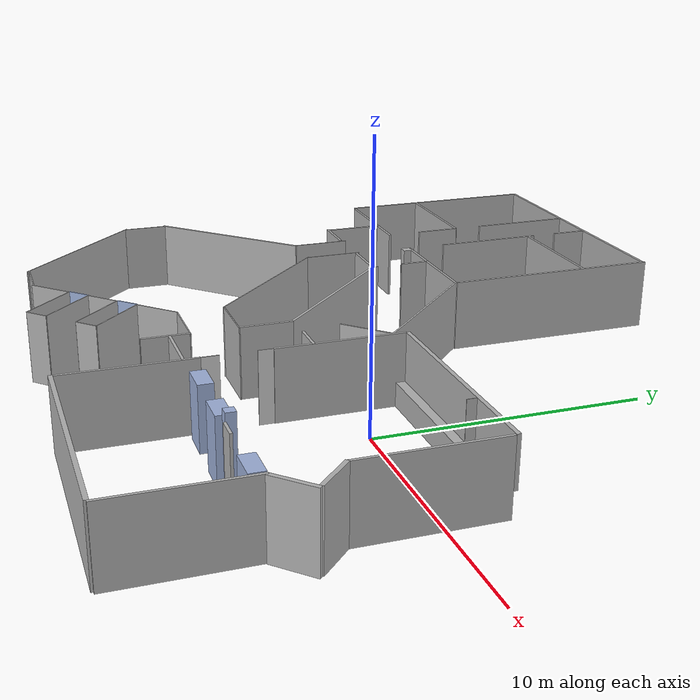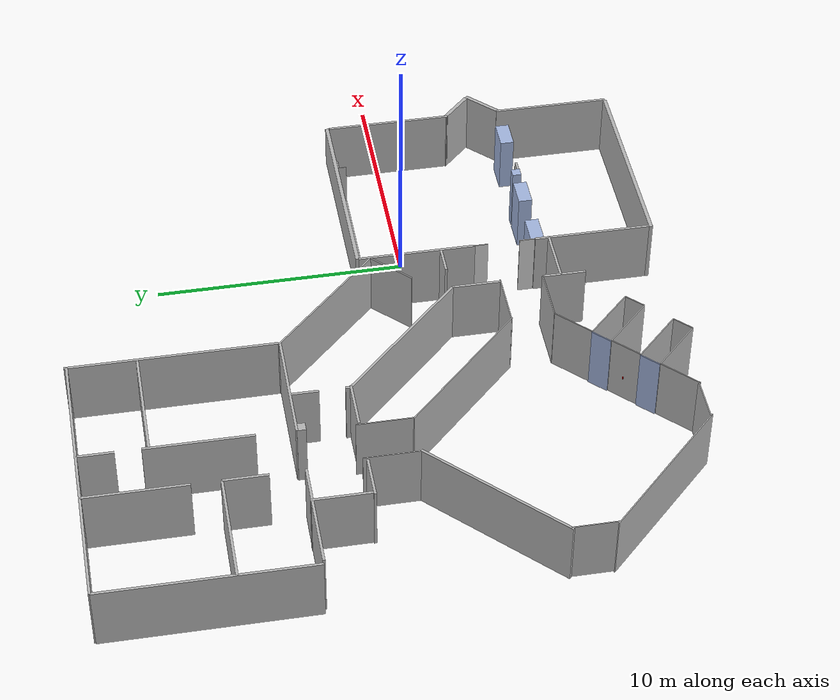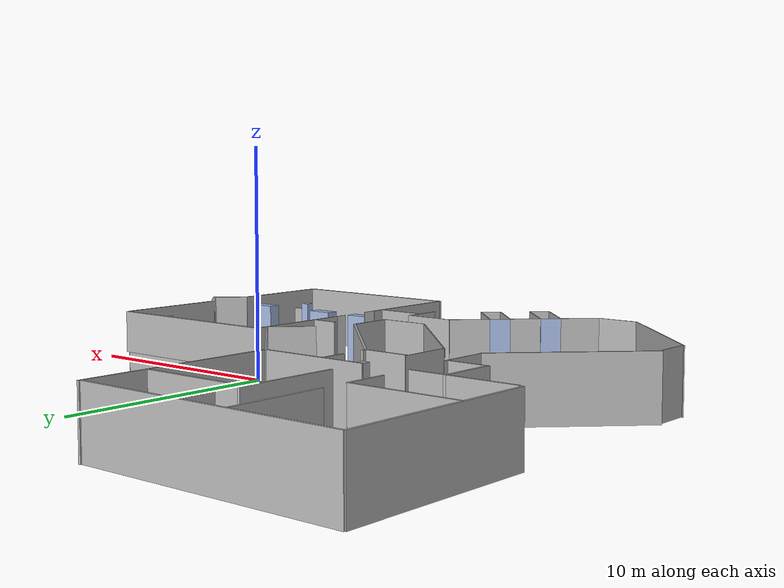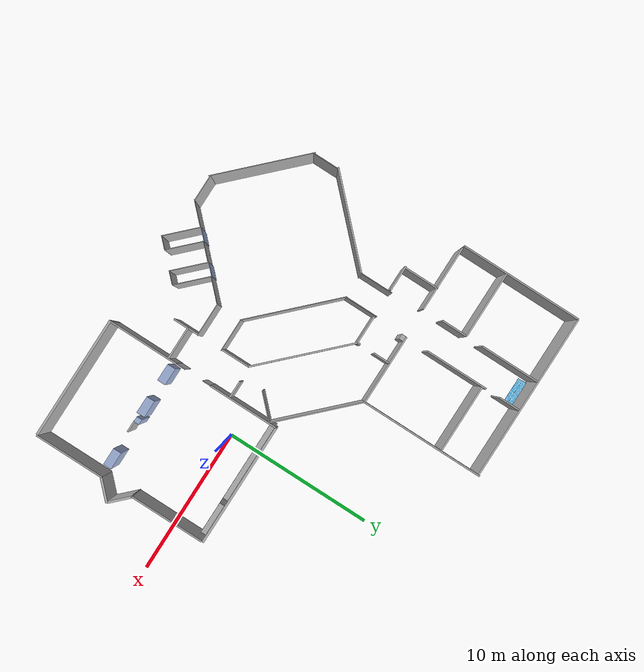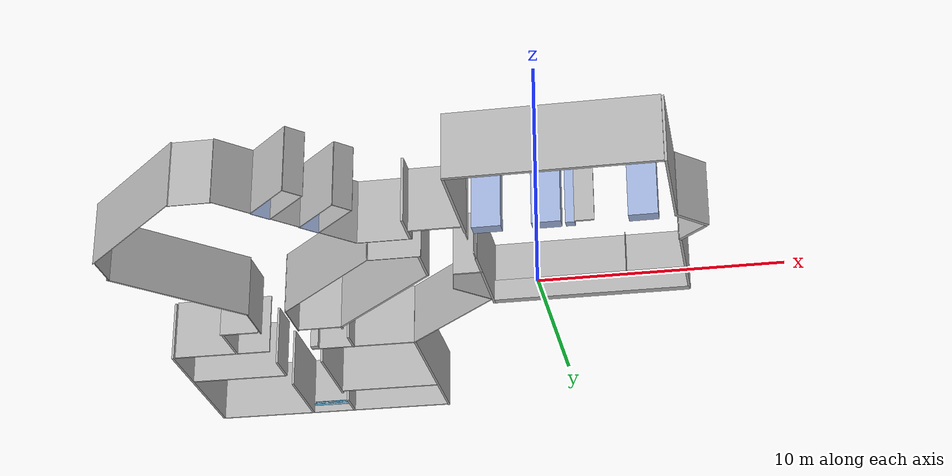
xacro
<?xml version="1.0"?>
<robot xmlns:xacro="http://www.ros.org/wiki/xacro"
       name="ipa-apartment">

  <xacro:include filename="$(find cob_gazebo_worlds)/urdf/common.xacro" />
  <xacro:include filename="$(find cob_gazebo_worlds)/urdf/materials.urdf.xacro" />

  <!-- apartment -->
  <xacro:include filename="$(find cob_gazebo_worlds)/urdf/ipa-apartment/apartment.urdf.xacro" />

  <!-- office-->
  <xacro:include filename="$(find cob_gazebo_worlds)/urdf/ipa-apartment/office.urdf.xacro" />

  <!-- landing-->
  <xacro:include filename="$(find cob_gazebo_worlds)/urdf/ipa-apartment/landing.urdf.xacro" />

  <!-- elevator-->
  <xacro:include filename="$(find cob_gazebo_worlds)/urdf/ipa-apartment/elevator.urdf.xacro" />

  <!-- cabinets-->
  <xacro:include filename="$(find cob_gazebo_worlds)/urdf/ipa-apartment/cabinets.urdf.xacro" />

  <!-- kitchen-->
  <xacro:include filename="$(find cob_gazebo_worlds)/urdf/ipa-apartment/kitchen.urdf.xacro" />

  <!-- wall_ipa-->
  <xacro:include filename="$(find cob_gazebo_worlds)/urdf/ipa-apartment/wall_ipa.urdf.xacro" />

  <!--Parameters-->
  <xacro:property name="dist_axis_x" value="1.969" />
  <xacro:property name="dist_axis_y" value="4.070" />

  <xacro:property name="size_total_x" value="8.0" />
  <xacro:property name="size_total_y" value="11.2" />

  <xacro:property name="size_a" value="4.7" />
  <xacro:property name="size_b" value="8.2" />
  <xacro:property name="size_c" value="1.8" />
  <xacro:property name="size_d" value="4.16" />

  <xacro:property name="wall_depth" value="0.1" />
  <xacro:property name="window_depth" value="0.15" />

  <xacro:property name="size_z_wall1" value="2.7" />
  <xacro:property name="size_z_wall2" value="2.7" />
  <xacro:property name="size_z_wall3" value="2.7" />

  <xacro:macro name="ipa-apartment" params="name">

    <gazebo>
      <plugin name="environment_gazebo_ros_control" filename="libgazebo_ros_control.so">
        <robotNamespace>world</robotNamespace>
        <robotParam>/world_description</robotParam>
      </plugin>
    </gazebo>

    <link name="world"/>

    <xacro:apartment name="apartment">
    </xacro:apartment>

    <xacro:landing name="landing" parent="world">
        <origin xyz="${-13.9+dist_axis_x} ${-dist_axis_y} 0" rpy="0 0 0" />
    </xacro:landing>

    <xacro:office name="office">
    </xacro:office>

    <xacro:elevator name="elevator">
    </xacro:elevator>

    <xacro:cabinets name="cabinets">
    </xacro:cabinets>

    <xacro:wall_ipa name="wall_ipa">
    </xacro:wall_ipa>

  </xacro:macro>

  <xacro:ipa-apartment name="ipa-apartment" />

</robot>

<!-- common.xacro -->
<robot xmlns:xacro="http://www.ros.org/wiki/xacro">

  <xacro:property name="M_PI" value="3.1415926535897931" />

  <!-- see https://secure.wikimedia.org/wikipedia/en/wiki/List_of_moment_of_inertia_tensors -->
  <xacro:macro name="sphere_inertial" params="radius mass *origin">
    <inertial>
      <mass value="${mass}" />
      <xacro:insert_block name="origin" />
      <inertia ixx="${0.4 * mass * radius * radius}" ixy="0.0" ixz="0.0"
        iyy="${0.4 * mass * radius * radius}" iyz="0.0"
        izz="${0.4 * mass * radius * radius}" />
    </inertial>
  </xacro:macro>

  <xacro:macro name="cylinder_inertial" params="radius length mass *origin">
    <inertial>
      <mass value="${mass}" />
      <xacro:insert_block name="origin" />
      <inertia ixx="${0.0833333 * mass * (3 * radius * radius + length * length)}" ixy="0.0" ixz="0.0"
        iyy="${0.0833333 * mass * (3 * radius * radius + length * length)}" iyz="0.0"
        izz="${0.5 * mass * radius * radius}" />
    </inertial>
  </xacro:macro>

  <xacro:macro name="box_inertial" params="x y z mass *origin">
    <inertial>
      <mass value="${mass}" />
      <xacro:insert_block name="origin" />
      <inertia ixx="${0.0833333 * mass * (y*y + z*z)}" ixy="0.0" ixz="0.0"
        iyy="${0.0833333 * mass * (x*x + z*z)}" iyz="0.0"
        izz="${0.0833333 * mass * (x*x + y*y)}" />
    </inertial>
  </xacro:macro>

  <xacro:macro name="default_inertial">
    <inertial>
      <mass value="0.01"/>
      <origin xyz="0 0 0"/>
      <inertia ixx="0.001" ixy="0.0" ixz="0.0" iyy="0.001" iyz="0.0" izz="0.001" />
    </inertial>
  </xacro:macro>

</robot>

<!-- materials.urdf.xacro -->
<robot>

  <material name="IPA/Blue">
    <color rgba="0.0 0.0 0.8 1.0"/>
  </material>

  <material name="IPA/Green">
    <color rgba="0.0 0.8 0.0 1.0"/>
  </material>

  <material name="IPA/Grey">
    <color rgba="0.7 0.7 0.7 1.0"/>
  </material>

  <material name="IPA/Grey2">
    <color rgba="0.81 0.81 0.81 1.0"/>
  </material>

  <material name="IPA/Red">
    <color rgba="0.8 0.0 0.0 1.0"/>
  </material>

  <material name="IPA/White">
    <color rgba="1.0 1.0 1.0 1.0"/>
  </material>

  <material name="IPA/Black">
    <color rgba="0.0 0.0 0.0 1.0"/>
  </material>

  <material name="IPA/Transparent">
    <color rgba="0.81 0.81 0.81 0.0"/>
  </material>

  <material name="IPA/LightBlue">
    <color rgba="0.624 0.698 0.858 1"/>
  </material>

</robot>

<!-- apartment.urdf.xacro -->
<robot xmlns:xacro="http://www.ros.org/wiki/xacro">

  <xacro:macro name="apartment" params="name">

  <!-- wall_00 -->
  <link name="wall_00">
    <xacro:box_inertial x="${wall_depth}" y="${size_d+0.18+0.35}" z="${size_z_wall1}" mass="5.0">
      <origin xyz="0 0 0" rpy="0 0 0" />
    </xacro:box_inertial>
    <visual>
      <origin xyz="0 0 0" />
      <geometry>
        <box size="${wall_depth} ${size_d+0.18+0.35} ${size_z_wall1}" />
      </geometry>
      <material name="IPA/Grey"/>
    </visual>
    <collision>
      <origin xyz="0 0 0" />
      <geometry>
        <box size="${wall_depth} ${size_d+0.18+0.35} ${size_z_wall1}" />
      </geometry>
    </collision>
  </link>

  <gazebo reference="wall_00">
    <material>wall_floor_05</material>
  </gazebo>

  <joint name="joint_wall_00" type="fixed">
    <origin xyz="${-size_total_x/2+dist_axis_x-wall_depth} ${(size_total_y/2-size_d/2+0.1-dist_axis_y)+0.175} ${size_z_wall1/2}" rpy="0 0 0" />
    <parent link="world" />
    <child link="wall_00" />
  </joint>

  <!-- wall_01 -->
  <link name="wall_01_part1">
    <xacro:box_inertial x="${size_b}" y="0.001" z="0.90" mass="5.0">
      <origin xyz="0 0 0" rpy="0 0 0" />
    </xacro:box_inertial>
    <visual>
      <origin xyz="0 0 0" />
      <geometry>
        <box size=" ${size_b} 0.001 0.90" />
      </geometry>
      <material name="IPA/Grey"/>
    </visual>
    <collision>
      <origin xyz="0 0 0" />
      <geometry>
        <box size="${size_b} 0.001 0.90" />
      </geometry>
    </collision>
  </link>

  <gazebo reference="wall_01_part1">
    <material>kitchen_wall_with_heating</material>
  </gazebo>

  <joint name="joint_wall_01_part1" type="fixed">
    <origin xyz="${dist_axis_x} ${size_total_y/2-dist_axis_y+window_depth+0.02} 0.45" rpy="0 0 0" />
    <parent link="world" />
    <child link="wall_01_part1" />
  </joint>

  <!-- wall_01_part2 -->
  <link name="wall_01_part2">
    <xacro:box_inertial x="${size_b}" y="0.35" z="0.90" mass="5.0">
      <origin xyz="0 0 0" rpy="0 0 0" />
    </xacro:box_inertial>
    <visual>
      <origin xyz="0 0 0" />
      <geometry>
        <box size=" ${size_b} 0.35 0.90" />
      </geometry>
      <material name="IPA/Grey"/>
    </visual>
    <collision>
      <origin xyz="0 0 0" />
      <geometry>
        <box size="${size_b} 0.35 0.90" />
      </geometry>
    </collision>
  </link>

  <gazebo reference="wall_01_part2">
    <material>kitchen_window_board</material>
  </gazebo>

  <joint name="joint_wall_01_part2" type="fixed">
    <origin xyz="${dist_axis_x} ${size_total_y/2-dist_axis_y+window_depth+0.195} 0.45" rpy="0 0 0" />
    <parent link="world" />
    <child link="wall_01_part2" />
  </joint>

  <!-- wall_01_little_glas -->
  <link name="wall_01_little_glas">
    <xacro:box_inertial x="0.02" y="0.35" z="2.70" mass="5.0">
      <origin xyz="0 0 0" rpy="0 0 0" />
    </xacro:box_inertial>
    <visual>
      <origin xyz="0 0 0" />
      <geometry>
        <box size="0.02 0.35 2.70" />
      </geometry>
      <material name="IPA/Grey"/>
    </visual>
    <collision>
      <origin xyz="0 0 0" />
      <geometry>
        <box size="0.02 0.35 2.70" />
      </geometry>
    </collision>
  </link>

  <gazebo reference="wall_01_little_glas">
    <material>kitchen_wall_with_windows</material>
  </gazebo>

  <joint name="joint_wall_01_little_glas" type="fixed">
    <origin xyz="3.5 ${size_total_y/2-dist_axis_y+window_depth+0.195} 1.35" rpy="0 0 0" />
    <parent link="world" />
    <child link="wall_01_little_glas" />
  </joint>

  <!-- wall_01_part3 -->
  <link name="wall_01_part3">
    <xacro:box_inertial x="${size_b}" y="${window_depth}" z="1.80" mass="5.0">
      <origin xyz="0 0 0" rpy="0 0 0" />
    </xacro:box_inertial>
    <visual>
      <origin xyz="0 0 0" />
      <geometry>
        <box size=" ${size_b} ${window_depth} 1.80" />
      </geometry>
      <material name="IPA/Grey"/>
    </visual>
    <collision>
      <origin xyz="0 0 0" />
      <geometry>
        <box size="${size_b} ${window_depth} 1.80" />
      </geometry>
    </collision>
  </link>

  <gazebo reference="wall_01_part3">
    <material>kitchen_wall_with_windows</material>
  </gazebo>

  <joint name="joint_wall_01_part3" type="fixed">
    <origin xyz="${dist_axis_x} ${size_total_y/2-dist_axis_y+window_depth+0.44} 1.80" rpy="0 0 0" />
    <parent link="world" />
    <child link="wall_01_part3" />
  </joint>

  <!-- wall_02 -->
  <link name="wall_02">
    <xacro:box_inertial x="${wall_depth}" y="${size_a+0.35}" z="${size_z_wall2}" mass="5.0">
      <origin xyz="0 0 0" rpy="0 0 0" />
    </xacro:box_inertial>
    <visual>
      <origin xyz="0 0 0" />
      <geometry>
        <box size="${wall_depth} ${size_a+0.35} ${size_z_wall2}" />
      </geometry>
      <material name="IPA/Grey"/>
    </visual>
    <collision>
      <origin xyz="0 0 0" />
      <geometry>
        <box size="${wall_depth} ${size_a+0.35} ${size_z_wall2}" />
      </geometry>
    </collision>
  </link>

  <gazebo reference="wall_02">
    <material>wall_floor_05</material>
  </gazebo>

  <joint name="joint_wall_02" type="fixed">
    <origin xyz="${size_total_x/2+dist_axis_x+wall_depth} ${(size_total_y/2-size_a/2+0.15-dist_axis_y)+0.175} ${size_z_wall2/2}" rpy="0 0 0" />
    <parent link="world" />
    <child link="wall_02" />
  </joint>

  <!-- wall_03 -->
  <link name="wall_03">
    <xacro:box_inertial x="${window_depth}" y="1.55" z="${size_z_wall2}" mass="5.0">
      <origin xyz="0 0 0" rpy="0 0 0" />
    </xacro:box_inertial>
    <visual>
      <origin xyz="0 0 0" />
      <geometry>
        <box size=" ${window_depth} 1.55 ${size_z_wall2}" />
      </geometry>
      <material name="IPA/Grey"/>
    </visual>
    <collision>
      <origin xyz="0 0 0" />
      <geometry>
        <box size="${window_depth} 1.55 ${size_z_wall2}" />
      </geometry>
    </collision>
  </link>

  <gazebo reference="wall_03">
    <material>emergencyExit_window_left</material>
  </gazebo>

  <joint name="joint_wall_03" type="fixed">
    <origin xyz="${size_total_x/2+dist_axis_x+0.55+window_depth/2} ${0.6-dist_axis_y} ${size_z_wall2/2}" rpy="0 0 0.785398" />
    <parent link="world" />
    <child link="wall_03" />
  </joint>

  <!-- wall_04 -->
  <link name="wall_04">
    <xacro:box_inertial x="${window_depth}" y="1.6" z="${size_z_wall2}" mass="5.0">
      <origin xyz="0 0 0" rpy="0 0 0" />
    </xacro:box_inertial>
    <visual>
      <origin xyz="0 0 0" />
      <geometry>
        <box size="${window_depth} 1.6 ${size_z_wall2}" />
      </geometry>
      <material name="IPA/Grey"/>
    </visual>
    <collision>
      <origin xyz="0 0 0" />
      <geometry>
        <box size="${window_depth} 1.6 ${size_z_wall2}" />
      </geometry>
    </collision>
  </link>

  <gazebo reference="wall_04">
    <material>emergencyExit_window_right</material>
  </gazebo>

  <joint name="joint_wall_04" type="fixed">
    <origin xyz="${size_total_x/2+dist_axis_x+0.61+window_depth/2} ${-0.54-dist_axis_y} ${size_z_wall2/2}" rpy="0 0 -0.785398" />
    <parent link="world" />
    <child link="wall_04" />
  </joint>

  <!-- wall_05 -->
  <link name="wall_05">
    <xacro:box_inertial x="${wall_depth}" y="${size_a}" z="${size_z_wall2}" mass="5.0">
      <origin xyz="0 0 0" rpy="0 0 0" />
    </xacro:box_inertial>
    <visual>
      <origin xyz="0 0 0" />
      <geometry>
        <box size="${wall_depth} ${size_a} ${size_z_wall2}" />
      </geometry>
      <material name="IPA/Grey"/>
    </visual>
    <collision>
      <origin xyz="0 0 0" />
      <geometry>
        <box size="${wall_depth} ${size_a} ${size_z_wall2}" />
      </geometry>
    </collision>
  </link>

  <gazebo reference="wall_05">
    <material>wall_floor_05</material>
  </gazebo>

  <joint name="joint_wall_05" type="fixed">
    <origin xyz="${size_total_x/2+dist_axis_x+wall_depth} ${-size_total_y/2+size_a/2-0.15-dist_axis_y} ${size_z_wall2/2}" rpy="0 0 0" />
    <parent link="world" />
    <child link="wall_05" />
  </joint>

  <!-- wall_06 -->
  <link name="wall_06">
    <xacro:box_inertial x="${size_b}" y="${window_depth}" z="${size_z_wall2}" mass="5.0">
      <origin xyz="0 0 0" rpy="0 0 0" />
    </xacro:box_inertial>
    <visual>
      <origin xyz="0 0 0" />
      <geometry>
        <box size=" ${size_b} ${window_depth} ${size_z_wall2}" />
      </geometry>
      <material name="IPA/Grey"/>
    </visual>
    <collision>
      <origin xyz="0 0 0" />
      <geometry>
        <box size="${size_b} ${window_depth+0.02} ${size_z_wall2}" />
      </geometry>
    </collision>
  </link>

  <gazebo reference="wall_06">
    <material>wall_livingroom1</material>
  </gazebo>

  <joint name="joint_wall_06" type="fixed">
    <origin xyz="${+dist_axis_x-0.05} ${-size_total_y/2-dist_axis_y-window_depth} ${size_z_wall2/2}" rpy="0 0 0" />
    <parent link="world" />
    <child link="wall_06" />
  </joint>

  <!-- wall_07 -->
  <link name="wall_07">
    <xacro:box_inertial x="${wall_depth}" y="${size_a}" z="${size_z_wall1}" mass="5.0">
      <origin xyz="0 0 0" rpy="0 0 0" />
    </xacro:box_inertial>
    <visual>
      <origin xyz="0 0 0" />
      <geometry>
        <box size="${wall_depth} ${size_a} ${size_z_wall1}" />
      </geometry>
      <material name="IPA/Grey"/>
    </visual>
    <collision>
      <origin xyz="0 0 0" />
      <geometry>
        <box size="${wall_depth} ${size_a} ${size_z_wall1}" />
      </geometry>
    </collision>
  </link>

  <gazebo reference="wall_07">
    <material>wall_floor_05</material>
  </gazebo>

  <joint name="joint_wall_07" type="fixed">
    <origin xyz="${-size_total_x/2+dist_axis_x-wall_depth} ${-size_total_y/2+size_a/2-0.1-dist_axis_y} ${size_z_wall1/2}" rpy="0 0 0" />
    <parent link="world" />
    <child link="wall_07" />
  </joint>

  <!-- door_00 -->
  <link name="door_00">
    <xacro:box_inertial x="0.04" y="0.62" z="${size_z_wall1}" mass="5.0">
      <origin xyz="0 0 0" rpy="0 0 0" />
    </xacro:box_inertial>
    <visual>
      <origin xyz="0 0 0" />
      <geometry>
        <box size="0.04 0.62 ${size_z_wall1}" />
      </geometry>
      <material name="IPA/Transparent"/>
    </visual>
    <collision>
      <origin xyz="0 0 0" />
      <geometry>
        <box size="0.04 0.62 ${size_z_wall1}" />
      </geometry>
    </collision>
  </link>

  <gazebo reference="door_00">
    <material>IPA/Wall2</material>
  </gazebo>

  <joint name="joint_door_00" type="fixed">
    <origin xyz="${-size_total_x/2+dist_axis_x-wall_depth} ${1.22-dist_axis_y} ${size_z_wall1/2}" rpy="0 0 0" />
    <parent link="world" />
    <child link="door_00" />
  </joint>

  <!-- door_01 -->
  <link name="door_01">
    <xacro:box_inertial x="0.04" y="0.62" z="${size_z_wall1}" mass="5.0">
      <origin xyz="0 0 0" rpy="0 0 0" />
    </xacro:box_inertial>
    <visual>
      <origin xyz="0 0 0" />
      <geometry>
        <box size="0.04 0.62 ${size_z_wall1}" />
      </geometry>
      <material name="IPA/Transparent"/>
    </visual>
    <collision>
      <origin xyz="0 0 0" />
      <geometry>
        <box size="0.04 0.62 ${size_z_wall1}" />
      </geometry>
    </collision>
  </link>

  <gazebo reference="door_01">
    <material>IPA/Wall2</material>
  </gazebo>

  <joint name="joint_door_01" type="fixed">
    <origin xyz="${-size_total_x/2+dist_axis_x-wall_depth} ${-0.68-dist_axis_y} ${size_z_wall1/2}" rpy="0 0 0" />
    <parent link="world" />
    <child link="door_01" />
  </joint>

  </xacro:macro>

</robot>

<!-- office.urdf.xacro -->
<robot xmlns:xacro="http://www.ros.org/wiki/xacro">

  <xacro:macro name="office" params="name">

  <link name="origin_office">
    <xacro:default_inertial/>
  </link>

  <joint name="joint_origin_office" type="fixed">
    <origin xyz="0 14 0" rpy="0 0 0" />
          <parent link="origin_landing"/>
    <child link="origin_office" />
  </joint>

  <!-- wall_office_00 -->
  <link name="wall_office_00">
    <xacro:box_inertial x="4.65" y="${wall_depth}" z="${size_z_wall1}" mass="5.0">
      <origin xyz="0 0 0" rpy="0 0 0" />
    </xacro:box_inertial>
    <visual>
      <origin xyz="0 0 0" />
      <geometry>
        <box size="4.65 ${wall_depth} ${size_z_wall1}" />
      </geometry>
      <material name="IPA/Grey"/>
    </visual>
    <collision>
      <origin xyz="0 0 0" />
      <geometry>
        <box size="4.65 ${wall_depth} ${size_z_wall1}" />
      </geometry>
    </collision>
  </link>

  <gazebo reference="wall_office_00">
    <material>wall_floor_05</material>
  </gazebo>

  <joint name="joint_wall_office_00" type="fixed">
    <origin xyz="3.25 -4.15 ${size_z_wall1/2}" rpy="0 0 0" />
    <parent link="origin_office" />
    <child link="wall_office_00" />
  </joint>

  <!-- wall_office_01 -->
  <link name="wall_office_01">
    <xacro:box_inertial x="4.4" y="${wall_depth}" z="${size_z_wall1}" mass="5.0">
      <origin xyz="0 0 0" rpy="0 0 0" />
    </xacro:box_inertial>
    <visual>
      <origin xyz="0 0 0" />
      <geometry>
        <box size="4.4 ${wall_depth} ${size_z_wall1}" />
      </geometry>
      <material name="IPA/Grey"/>
    </visual>
    <collision>
      <origin xyz="0 0 0" />
      <geometry>
        <box size="4.4 ${wall_depth} ${size_z_wall1}" />
      </geometry>
    </collision>
  </link>

  <gazebo reference="wall_office_01">
    <material>wall_floor_11</material>
  </gazebo>

  <joint name="joint_wall_office_01" type="fixed">
    <origin xyz="-3.25 -4.22 ${size_z_wall1/2}" rpy="0 0 0" />
    <parent link="origin_office" />
    <child link="wall_office_01" />
  </joint>

  <!-- wall_office_02 -->
  <link name="wall_office_02">
    <xacro:box_inertial x="${wall_depth}" y="8.2" z="${size_z_wall2}" mass="5.0">
      <origin xyz="0 0 0" rpy="0 0 0" />
    </xacro:box_inertial>
    <visual>
      <origin xyz="0 0 0" />
      <geometry>
        <box size="${wall_depth} 8.2 ${size_z_wall2}" />
      </geometry>
      <material name="IPA/Grey"/>
    </visual>
    <collision>
      <origin xyz="0 0 0" />
      <geometry>
        <box size="${wall_depth} 8.2 ${size_z_wall2}" />
      </geometry>
    </collision>
  </link>

  <gazebo reference="wall_office_02">
    <material>wall_livingroom1</material>
  </gazebo>

  <joint name="joint_wall_office_02" type="fixed">
    <origin xyz="5.6 0 ${size_z_wall2/2}" rpy="0 0 0" />
    <parent link="origin_office" />
    <child link="wall_office_02" />
  </joint>

  <!-- wall_office_03-->
  <link name="wall_office_03">
    <xacro:box_inertial x="${wall_depth}" y="8.2" z="${size_z_wall2}" mass="5.0">
      <origin xyz="0 0 0" rpy="0 0 0" />
    </xacro:box_inertial>
    <visual>
      <origin xyz="0 0 0" />
      <geometry>
        <box size="${wall_depth} 8.2 ${size_z_wall2}" />
      </geometry>
      <material name="IPA/Grey"/>
    </visual>
    <collision>
      <origin xyz="0 0 0" />
      <geometry>
        <box size="${wall_depth} 8.2 ${size_z_wall2}" />
      </geometry>
    </collision>
  </link>

  <gazebo reference="wall_office_03">
    <material>wall_livingroom1</material>
  </gazebo>

  <joint name="joint_wall_office_03" type="fixed">
    <origin xyz="-5.6 -0.1 ${size_z_wall2/2}" rpy="0 0 0" />
    <parent link="origin_office" />
    <child link="wall_office_03" />
  </joint>

  <!-- wall_04 -->
  <link name="wall_office_04">
    <xacro:box_inertial x="11.2" y="${wall_depth}" z="${size_z_wall2}" mass="5.0">
      <origin xyz="0 0 0" rpy="0 0 0" />
    </xacro:box_inertial>
    <visual>
      <origin xyz="0 0 0" />
      <geometry>
        <box size="11.2 ${wall_depth} ${size_z_wall2}" />
      </geometry>
      <material name="IPA/Grey"/>
    </visual>
    <collision>
      <origin xyz="0 0 0" />
      <geometry>
        <box size="11.2 ${wall_depth} ${size_z_wall2}" />
      </geometry>
    </collision>
  </link>

  <gazebo reference="wall_office_04">
    <material>wall_livingroom1</material>
  </gazebo>

  <joint name="joint_wall_office_04" type="fixed">
    <origin xyz="0 4 ${size_z_wall2/2}" rpy="0 0 0" />
    <parent link="origin_office" />
    <child link="wall_office_04" />
  </joint>

  <!-- wall_05 -->
  <link name="wall_office_05">
    <xacro:box_inertial x="${wall_depth}" y="4.21" z="${size_z_wall1}" mass="5.0">
      <origin xyz="0 0 0" rpy="0 0 0" />
    </xacro:box_inertial>
    <visual>
      <origin xyz="0 0 0" />
      <geometry>
        <box size="${wall_depth} 4.21 ${size_z_wall1}" />
      </geometry>
      <material name="IPA/Grey"/>
    </visual>
    <collision>
      <origin xyz="0 0 0" />
      <geometry>
        <box size="${wall_depth} 4.21 ${size_z_wall1}" />
      </geometry>
    </collision>
  </link>

  <gazebo reference="wall_office_05">
    <material>wall_floor_05</material>
  </gazebo>

  <joint name="joint_wall_office_05" type="fixed">
    <origin xyz="0.95 -0.52 ${size_z_wall1/2}" rpy="0 0 0" />
    <parent link="origin_office" />
    <child link="wall_office_05" />
  </joint>

  <!-- wall_06 -->
  <link name="wall_office_06">
    <xacro:box_inertial x="${wall_depth}" y="1.4" z="${size_z_wall1}" mass="5.0">
      <origin xyz="0 0 0" rpy="0 0 0" />
    </xacro:box_inertial>
    <visual>
      <origin xyz="0 0 0" />
      <geometry>
        <box size="${wall_depth} 1.40 ${size_z_wall1}" />
      </geometry>
      <material name="IPA/Grey"/>
    </visual>
    <collision>
      <origin xyz="0 0 0" />
      <geometry>
        <box size="${wall_depth} 1.40 ${size_z_wall1}" />
      </geometry>
    </collision>
  </link>

  <gazebo reference="wall_office_06">
    <material>wall_floor_06</material>
  </gazebo>

  <joint name="joint_wall_office_06" type="fixed">
    <origin xyz="0.95 3.28 ${size_z_wall1/2}" rpy="0 0 0" />
    <parent link="origin_office" />
    <child link="wall_office_06" />
  </joint>

  <!-- wall_07 -->
  <link name="wall_office_07">
    <xacro:box_inertial x="${wall_depth}" y="4.01" z="${size_z_wall1}" mass="5.0">
      <origin xyz="0 0 0" rpy="0 0 0" />
    </xacro:box_inertial>
    <visual>
      <origin xyz="0 0 0" />
      <geometry>
        <box size="${wall_depth} 4.01 ${size_z_wall1}" />
      </geometry>
      <material name="IPA/Grey"/>
    </visual>
    <collision>
      <origin xyz="0 0 0" />
      <geometry>
        <box size="${wall_depth} 4.01 ${size_z_wall1}" />
      </geometry>
    </collision>
  </link>

  <gazebo reference="wall_office_07">
    <material>wall_floor_07</material>
  </gazebo>

  <joint name="joint_wall_office_07" type="fixed">
    <origin xyz="-1.09 2 ${size_z_wall1/2}" rpy="0 0 0" />
    <parent link="origin_office" />
    <child link="wall_office_07" />
  </joint>

  <!-- wall_08 -->
  <link name="wall_office_08">
    <xacro:box_inertial x="${wall_depth}" y="1.73" z="${size_z_wall1}" mass="5.0">
      <origin xyz="0 0 0" rpy="0 0 0" />
    </xacro:box_inertial>
    <visual>
      <origin xyz="0 0 0" />
      <geometry>
        <box size="${wall_depth} 1.73 ${size_z_wall1}" />
      </geometry>
      <material name="IPA/Grey"/>
    </visual>
    <collision>
      <origin xyz="0 0 0" />
      <geometry>
        <box size="${wall_depth} 1.73 ${size_z_wall1}" />
      </geometry>
    </collision>
  </link>

  <gazebo reference="wall_office_08">
    <material>wall_floor_08</material>
  </gazebo>

  <joint name="joint_wall_office_08" type="fixed">
    <origin xyz="-1.09 -2 ${size_z_wall1/2}" rpy="0 0 0" />
    <parent link="origin_office" />
    <child link="wall_office_08" />
  </joint>

  <!-- wall_09 -->
  <link name="wall_office_09">
    <xacro:box_inertial x="4.53" y="${wall_depth}" z="${size_z_wall1}" mass="5.0">
      <origin xyz="0 0 0" rpy="0 0 0" />
    </xacro:box_inertial>
    <visual>
      <origin xyz="0 0 0" />
      <geometry>
        <box size="4.53 ${wall_depth} ${size_z_wall1}" />
      </geometry>
      <material name="IPA/Grey"/>
    </visual>
    <collision>
      <origin xyz="0 0 0" />
      <geometry>
        <box size="4.53 ${wall_depth} ${size_z_wall1}" />
      </geometry>
    </collision>
  </link>

  <gazebo reference="wall_office_09">
    <material>wall_bedroom1</material>
  </gazebo>

  <joint name="joint_wall_office_09" type="fixed">
    <origin xyz="3.26 1.32 ${size_z_wall1/2}" rpy="0 0 0" />
    <parent link="origin_office" />
    <child link="wall_office_09" />
  </joint>

  <!-- wall_10 -->
  <link name="wall_office_10">
    <xacro:box_inertial x="4.5" y="${wall_depth}" z="${size_z_wall1}" mass="5.0">
      <origin xyz="0 0 0" rpy="0 0 0" />
    </xacro:box_inertial>
    <visual>
      <origin xyz="0 0 0" />
      <geometry>
        <box size="4.5 ${wall_depth} ${size_z_wall1}" />
      </geometry>
      <material name="IPA/Grey"/>
    </visual>
    <collision>
      <origin xyz="0 0 0" />
      <geometry>
        <box size="4.5 ${wall_depth} ${size_z_wall1}" />
      </geometry>
    </collision>
  </link>

  <gazebo reference="wall_office_10">
    <material>wall_bedroom1</material>
  </gazebo>

  <joint name="joint_wall_office_10" type="fixed">
    <origin xyz="-3.35 -1.14 ${size_z_wall1/2}" rpy="0 0 0" />
    <parent link="origin_office" />
    <child link="wall_office_10" />
  </joint>

  <link name="boards_before_bedroom_link">
    <xacro:box_inertial x="1.8" y="0.55" z="0.22" mass="5.0">
      <origin xyz="0 0.03 0.11" rpy="0 0 0" />
    </xacro:box_inertial>
    <visual>
      <origin xyz="0 0 0" />
      <geometry>
        <mesh filename="package://cob_gazebo_worlds/Media/models/boards_before_bedroom.dae"/>
      </geometry>
    </visual>
    <collision>
      <origin xyz="0 0.03 0.11" />
      <geometry>
        <box size="1.8 0.55 0.22" />
       </geometry>
    </collision>
  </link>

  <joint name="joint_boards_before_bedroom" type="fixed">
    <origin xyz="0 3.62 0.25" rpy="0 0 0" />
    <parent link="origin_office" />
    <child link="boards_before_bedroom_link" />
  </joint>

  </xacro:macro>

</robot>

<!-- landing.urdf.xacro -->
<robot xmlns:xacro="http://www.ros.org/wiki/xacro">

  <xacro:macro name="landing" params="name parent *origin">

  <link name="origin_landing">
    <xacro:default_inertial/>
  </link>

  <joint name="joint_origin_landing" type="fixed">
    <xacro:insert_block name="origin" />
    <parent link="${parent}"/>
    <child link="origin_landing" />
  </joint>

  <!-- wall ext -->

  <!-- wall ext -->
  <link name="door_E334">
    <xacro:box_inertial x="2.2" y="${wall_depth}" z="${size_z_wall1}" mass="5.0">
      <origin xyz="0 0 0" rpy="0 0 0" />
    </xacro:box_inertial>
    <visual>
      <origin xyz="0 0 0" />
      <geometry>
        <box size="2.2 ${wall_depth} ${size_z_wall1}" />
      </geometry>
      <material name="IPA/Grey"/>
    </visual>
    <collision>
      <origin xyz="0 0 0" />
      <geometry>
        <box size="2.2 ${wall_depth} ${size_z_wall1}" />
      </geometry>
    </collision>
  </link>

  <gazebo reference="door_E334">
    <material>door_E334</material>
  </gazebo>

  <joint name="joint_door_E334" type="fixed">
    <origin xyz="8.70 -1.565 ${size_z_wall1/2}" rpy="0 0 0" />
    <parent link="origin_landing" />
    <child link="door_E334" />
  </joint>

  <!-- wall ext -->
  <link name="wall_ext3">
    <xacro:box_inertial x="${wall_depth}" y="1.73" z="${size_z_wall1}" mass="5.0">
      <origin xyz="0 0 0" rpy="0 0 0" />
    </xacro:box_inertial>
    <visual>
      <origin xyz="0 0 0" />
      <geometry>
        <box size="${wall_depth} 1.73 ${size_z_wall1}" />
      </geometry>
      <material name="IPA/Grey"/>
    </visual>
    <collision>
      <origin xyz="0 0 0" />
      <geometry>
        <box size="${wall_depth} 1.73 ${size_z_wall1}" />
      </geometry>
    </collision>
  </link>

  <gazebo reference="wall_ext3">
    <material>wall_floor_07</material>
  </gazebo>

  <joint name="joint_wall_ext3" type="fixed">
    <origin xyz="7.6 -1.7 ${size_z_wall1/2}" rpy="0 0 0" />
    <parent link="origin_landing" />
    <child link="wall_ext3" />
  </joint>

  <!-- wall ext -->
  <link name="wall_ext4">
    <xacro:box_inertial x="${wall_depth}" y="1.93" z="${size_z_wall1}" mass="5.0">
      <origin xyz="0 0 0" rpy="0 0 0" />
    </xacro:box_inertial>
    <visual>
      <origin xyz="0 0 0" />
      <geometry>
        <box size="${wall_depth} 1.93 ${size_z_wall1}" />
      </geometry>
      <material name="IPA/Grey"/>
    </visual>
    <collision>
      <origin xyz="0 0 0" />
      <geometry>
        <box size="${wall_depth} 1.93 ${size_z_wall1}" />
      </geometry>
    </collision>
  </link>

  <gazebo reference="wall_ext4">
    <material>wall_floor_07</material>
  </gazebo>

  <joint name="joint_wall_ext4" type="fixed">
    <origin xyz="7.58 1.83 ${size_z_wall1/2}" rpy="0 0 0" />
    <parent link="origin_landing" />
    <child link="wall_ext4" />
  </joint>

  <link name="wall_ext5">
    <xacro:box_inertial x="2.24" y="0.04" z="${size_z_wall1}" mass="5.0">
      <origin xyz="0 0 0" rpy="0 0 0" />
    </xacro:box_inertial>
    <visual>
      <origin xyz="0 0 0" />
      <geometry>
        <box size="2.24 0.04 ${size_z_wall1}" />
      </geometry>
      <material name="IPA/Grey"/>
    </visual>
    <collision>
      <origin xyz="0 0 0" />
      <geometry>
        <box size="2.24 0.04 ${size_z_wall1}" />
      </geometry>
    </collision>
  </link>

  <gazebo reference="wall_ext5">
    <material>door_opposite_of_men_toilet</material>
  </gazebo>

  <joint name="joint_wall_ext5" type="fixed">
    <origin xyz="6.55 -0.85 ${size_z_wall1/2}" rpy="0 0 0" />
    <parent link="origin_landing" />
    <child link="wall_ext5" />
  </joint>

  <link name="wall_ext6">
    <xacro:box_inertial x="2.24" y="0.04" z="${size_z_wall1}" mass="5.0">
      <origin xyz="0 0 0" rpy="0 0 0" />
    </xacro:box_inertial>
    <visual>
      <origin xyz="0 0 0" />
      <geometry>
        <box size="2.24 0.04 ${size_z_wall1}" />
      </geometry>
      <material name="IPA/Grey"/>
    </visual>
    <collision>
      <origin xyz="0 0 0" />
      <geometry>
        <box size="2.24 0.04 ${size_z_wall1}" />
      </geometry>
    </collision>
  </link>

  <gazebo reference="wall_ext6">
    <material>door_toilet_men</material>
  </gazebo>

  <joint name="joint_wall_ext6" type="fixed">
    <origin xyz="6.55 0.85 ${size_z_wall1/2}" rpy="0 0 0" />
    <parent link="origin_landing" />
    <child link="wall_ext6" />
  </joint>

  <!--office landing-->

  <!-- wall ext -->
  <link name="wall_ext8">
    <xacro:box_inertial x="${wall_depth}" y="2.3" z="${size_z_wall1}" mass="5.0">
      <origin xyz="0 0 0" rpy="0 0 0" />
    </xacro:box_inertial>
    <visual>
      <origin xyz="0 0 0" />
      <geometry>
        <box size="${wall_depth} 2.3 ${size_z_wall1}" />
      </geometry>
      <material name="IPA/Grey"/>
    </visual>
    <collision>
      <origin xyz="0 0 0" />
      <geometry>
        <box size="${wall_depth} 2.3 ${size_z_wall1}" />
      </geometry>
    </collision>
  </link>

  <gazebo reference="wall_ext8">
    <material>wall_floor_05</material>
  </gazebo>

  <joint name="joint_wall_ext8" type="fixed">
    <origin xyz="-2.565 8.7 ${size_z_wall1/2}" rpy="0 0 0" />
    <parent link="origin_landing" />
    <child link="wall_ext8" />
  </joint>

  <!-- wall ext -->
  <link name="wall_ext9">
    <xacro:box_inertial x="1.73" y="${wall_depth}" z="${size_z_wall1}" mass="5.0">
      <origin xyz="0 0 0" rpy="0 0 0" />
    </xacro:box_inertial>
    <visual>
      <origin xyz="0 0 0" />
      <geometry>
        <box size="1.73 ${wall_depth} ${size_z_wall1}" />
      </geometry>
      <material name="IPA/Grey"/>
    </visual>
    <collision>
      <origin xyz="0 0 0" />
      <geometry>
        <box size="1.73 ${wall_depth} ${size_z_wall1}" />
      </geometry>
    </collision>
  </link>

  <gazebo reference="wall_ext9">
    <material>wall_floor_07</material>
  </gazebo>

  <joint name="joint_wall_ext9" type="fixed">
    <origin xyz="-1.8 7.50 ${size_z_wall1/2}" rpy="0 0 0" />
    <parent link="origin_landing" />
    <child link="wall_ext9" />
  </joint>

  <!-- wall ext -->
  <link name="wall_ext10">
    <xacro:box_inertial x="1.96" y="${wall_depth}" z="${size_z_wall1}" mass="5.0">
      <origin xyz="0 0 0" rpy="0 0 0" />
    </xacro:box_inertial>
    <visual>
      <origin xyz="0 0 0" />
      <geometry>
        <box size="1.96 ${wall_depth} ${size_z_wall1}" />
      </geometry>
      <material name="IPA/Grey"/>
    </visual>
    <collision>
      <origin xyz="0 0 0" />
      <geometry>
        <box size="1.96 ${wall_depth} ${size_z_wall1}" />
      </geometry>
    </collision>
  </link>

  <gazebo reference="wall_ext10">
    <material>wall_floor_07</material>
  </gazebo>

  <joint name="joint_wall_ext10" type="fixed">
    <origin xyz="1.89 7.53 ${size_z_wall1/2}" rpy="0 0 0" />
    <parent link="origin_landing" />
    <child link="wall_ext10" />
  </joint>

  <link name="wall_ext11">
    <xacro:box_inertial x="0.04" y="2.24" z="${size_z_wall1}" mass="5.0">
      <origin xyz="0 0 0" rpy="0 0 0" />
    </xacro:box_inertial>
    <visual>
      <origin xyz="0 0 0" />
      <geometry>
        <box size="0.04 2.24 ${size_z_wall1}" />
      </geometry>
      <material name="IPA/Grey"/>
    </visual>
    <collision>
      <origin xyz="0 0 0" />
      <geometry>
        <box size="0.04 2.24 ${size_z_wall1}" />
      </geometry>
    </collision>
  </link>

  <gazebo reference="wall_ext11">
    <material>door_women_toilet</material>
  </gazebo>

  <joint name="joint_wall_ext11" type="fixed">
    <origin xyz="-0.85 6.55 ${size_z_wall1/2}" rpy="0 0 0" />
    <parent link="origin_landing" />
    <child link="wall_ext11" />
  </joint>

  <link name="wall_ext12">
    <xacro:box_inertial x="0.04" y="2.24" z="${size_z_wall1}" mass="5.0">
      <origin xyz="0 0 0" rpy="0 0 0" />
    </xacro:box_inertial>
    <visual>
      <origin xyz="0 0 0" />
      <geometry>
        <box size="0.04 2.24 ${size_z_wall1}" />
      </geometry>
      <material name="IPA/Grey"/>
    </visual>
    <collision>
      <origin xyz="0 0 0" />
      <geometry>
        <box size="0.04 2.24 ${size_z_wall1}" />
      </geometry>
    </collision>
  </link>

  <gazebo reference="wall_ext12">
    <material>door_E322</material>
  </gazebo>

  <joint name="joint_wall_ext12" type="fixed">
    <origin xyz="0.85 6.55 ${size_z_wall1/2}" rpy="0 0 0" />
    <parent link="origin_landing" />
    <child link="wall_ext12" />
  </joint>

  <link name="wall_ext13">
    <xacro:box_inertial x="0.04" y="6.6" z="${size_z_wall1}" mass="5.0">
      <origin xyz="0 0 0" rpy="0 0 0" />
    </xacro:box_inertial>
    <visual>
      <origin xyz="0 0 0" />
      <geometry>
        <box size="0.04 6.6 ${size_z_wall1}" />
      </geometry>
      <material name="IPA/Grey"/>
    </visual>
    <collision>
      <origin xyz="0 0 0" />
      <geometry>
        <box size="0.04 6.6 ${size_z_wall1}" />
      </geometry>
    </collision>
  </link>

  <gazebo reference="wall_ext13">
    <material>wall_floor_07</material>
  </gazebo>

  <joint name="joint_wall_ext13" type="fixed">
    <origin xyz="3.15 3.15 ${size_z_wall1/2}" rpy="0 0 0.7854" />
    <parent link="origin_landing" />
    <child link="wall_ext13" />
  </joint>

  <link name="wall_ext14">
    <xacro:box_inertial x="${wall_depth}" y="6.6" z="${size_z_wall1}" mass="5.0">
      <origin xyz="0 0 0" rpy="0 0 0" />
    </xacro:box_inertial>
    <visual>
      <origin xyz="0 0 0" />
      <geometry>
        <box size="${wall_depth} 6.6 ${size_z_wall1}" />
      </geometry>
      <material name="IPA/Grey"/>
    </visual>
    <collision>
      <origin xyz="0 0 0" />
      <geometry>
        <box size="${wall_depth} 6.6 ${size_z_wall1}" />
      </geometry>
    </collision>
  </link>

  <gazebo reference="wall_ext14">
    <material>wall_floor_07</material>
  </gazebo>

  <joint name="joint_wall_ext14" type="fixed">
    <origin xyz="-3.15 3.15 ${size_z_wall1/2}" rpy="0 0 -0.7854" />
    <parent link="origin_landing" />
    <child link="wall_ext14" />
  </joint>

  <link name="wall_ext15">
    <xacro:box_inertial x="0.04" y="6.6" z="${size_z_wall1}" mass="5.0">
      <origin xyz="0 0 0" rpy="0 0 0" />
    </xacro:box_inertial>
    <visual>
      <origin xyz="0 0 0" />
      <geometry>
        <box size="0.04 6.6 ${size_z_wall1}" />
      </geometry>
      <material name="IPA/Grey"/>
    </visual>
    <collision>
      <origin xyz="0 0 0" />
      <geometry>
        <box size="0.04 6.6 ${size_z_wall1}" />
      </geometry>
    </collision>
  </link>

  <gazebo reference="wall_ext15">
    <material>wall_floor_07</material>
  </gazebo>

  <joint name="joint_wall_ext15" type="fixed">
    <origin xyz="-3.15 -3.15 ${size_z_wall1/2}" rpy="0 0 0.7854" />
    <parent link="origin_landing" />
    <child link="wall_ext15" />
  </joint>

  <link name="wall_ext16">
    <xacro:box_inertial x="0.04" y="1.8" z="${size_z_wall1}" mass="5.0">
      <origin xyz="0 0 0" rpy="0 0 0" />
    </xacro:box_inertial>
    <visual>
      <origin xyz="0 0 0" />
      <geometry>
        <box size="0.04 1.8 ${size_z_wall1}" />
      </geometry>
      <material name="IPA/Grey"/>
    </visual>
    <collision>
      <origin xyz="0 0 0" />
      <geometry>
        <box size="0.04 1.8 ${size_z_wall1}" />
      </geometry>
    </collision>
  </link>

  <gazebo reference="wall_ext16">
    <material>wall_floor_07</material>
  </gazebo>

  <joint name="joint_wall_ext16" type="fixed">
    <origin xyz="-5.4 0 ${size_z_wall1/2}" rpy="0 0 0" />
    <parent link="origin_landing" />
    <child link="wall_ext16" />
  </joint>

  <link name="wall_ext17">
    <xacro:box_inertial x="1.8" y="0.04" z="${size_z_wall1}" mass="5.0">
      <origin xyz="0 0 0" rpy="0 0 0" />
    </xacro:box_inertial>
    <visual>
      <origin xyz="0 0 0" />
      <geometry>
        <box size="1.8 0.04 ${size_z_wall1}" />
      </geometry>
      <material name="IPA/Grey"/>
    </visual>
    <collision>
      <origin xyz="0 0 0" />
      <geometry>
        <box size="1.8 0.04 ${size_z_wall1}" />
      </geometry>
    </collision>
  </link>

  <gazebo reference="wall_ext17">
    <material>wall_floor_07</material>
  </gazebo>

  <joint name="joint_wall_ext17" type="fixed">
    <origin xyz="0 -5.4 ${size_z_wall1/2}" rpy="0 0 0" />
    <parent link="origin_landing" />
    <child link="wall_ext17" />
  </joint>

  <link name="wall_ext21">
    <xacro:box_inertial x="${wall_depth}" y="6.75" z="${size_z_wall1}" mass="5.0">
      <origin xyz="0 0 0" rpy="0 0 0" />
    </xacro:box_inertial>
    <visual>
      <origin xyz="0 0 0" />
      <geometry>
        <box size="${wall_depth} 6.75 ${size_z_wall1}" />
      </geometry>
      <material name="IPA/Grey"/>
    </visual>
    <collision>
      <origin xyz="0 0 0" />
      <geometry>
        <box size="${wall_depth} 6.75 ${size_z_wall1}" />
      </geometry>
    </collision>
  </link>

  <gazebo reference="wall_ext21">
    <material>wall_livingroom2</material>
  </gazebo>

  <joint name="joint_wall_ext21" type="fixed">
    <origin xyz="5.20 5.15 ${size_z_wall1/2}" rpy="0 0 0.7854" />
    <parent link="origin_landing" />
    <child link="wall_ext21" />
  </joint>

  <link name="wall_ext22">
    <xacro:box_inertial x="0.06" y="6.00" z="${size_z_wall2}" mass="5.0">
      <origin xyz="0 0 0" rpy="0 0 0" />
    </xacro:box_inertial>
    <visual>
      <origin xyz="0 0 0" />
      <geometry>
        <box size="0.06 6.00 ${size_z_wall2}" />
      </geometry>
      <material name="IPA/Grey"/>
    </visual>
    <collision>
      <origin xyz="0 0 0" />
      <geometry>
        <box size="0.06 6.00 ${size_z_wall2}" />
      </geometry>
    </collision>
  </link>

  <gazebo reference="wall_ext22">
    <material>wall_livingroom1</material>
  </gazebo>

  <joint name="joint_wall_ext22" type="fixed">
    <origin xyz="7.65 7.79 ${size_z_wall2/2}" rpy="0 0 0.7854" />
    <parent link="origin_landing" />
    <child link="wall_ext22" />
  </joint>

  <link name="wall_ext23">
    <xacro:box_inertial x="1.2" y="${wall_depth}" z="${size_z_wall1}" mass="5.0">
      <origin xyz="0 0 0" rpy="0 0 0" />
    </xacro:box_inertial>
    <visual>
      <origin xyz="0 0 0" />
      <geometry>
        <box size="1.2 ${wall_depth} ${size_z_wall1}" />
      </geometry>
      <material name="IPA/Grey"/>
    </visual>
    <collision>
      <origin xyz="0 0 0" />
      <geometry>
        <box size="1.2 ${wall_depth} ${size_z_wall1}" />
      </geometry>
    </collision>
  </link>

  <gazebo reference="wall_ext23">
    <material>wall_floor_06</material>
  </gazebo>

  <joint name="joint_wall_ext23" type="fixed">
    <origin xyz="9.22 2.83 ${size_z_wall1/2}" rpy="0 0 0" />
    <parent link="origin_landing" />
    <child link="wall_ext23" />
  </joint>

  <link name="wall_ext24">
    <xacro:box_inertial x="1.99" y="0.06" z="${size_z_wall1}" mass="5.0">
      <origin xyz="0 0 0" rpy="0 0 0" />
    </xacro:box_inertial>
    <visual>
      <origin xyz="0 0 0" />
      <geometry>
        <box size="1.99 0.06 ${size_z_wall1}" />
      </geometry>
      <material name="IPA/Grey"/>
    </visual>
    <collision>
      <origin xyz="0 0 0" />
      <geometry>
        <box size="1.99 0.06 ${size_z_wall1}" />
      </geometry>
    </collision>
  </link>

  <gazebo reference="wall_ext24">
    <material>livingroom_slidingdoor</material>
  </gazebo>

  <joint name="joint_wall_ext24" type="fixed">
    <origin xyz="9.058 4.958 ${size_z_wall1/2}" rpy="0 0 0.7854" />
    <parent link="origin_landing" />
    <child link="wall_ext24" />
  </joint>

  <!-- wall ext25 -->
  <link name="wall_ext25">
    <xacro:box_inertial x="${wall_depth}" y="1.1" z="${size_z_wall1}" mass="5.0">
      <origin xyz="0 0 0" rpy="0 0 0" />
    </xacro:box_inertial>
    <visual>
      <origin xyz="0 0 0" />
      <geometry>
        <box size="${wall_depth} 1.1 ${size_z_wall1}" />
      </geometry>
      <material name="IPA/Grey"/>
    </visual>
    <collision>
      <origin xyz="0 0 0" />
      <geometry>
        <box size="${wall_depth} 1.1 ${size_z_wall1}" />
      </geometry>
    </collision>
  </link>

  <gazebo reference="wall_ext25">
    <material>wall_floor_06</material>
  </gazebo>

  <joint name="joint_wall_ext25" type="fixed">
    <origin xyz="2.81 9.3 ${size_z_wall1/2}" rpy="0 0 0" />
    <parent link="origin_landing" />
    <child link="wall_ext25" />
  </joint>

  <!-- wall ext26 -->
  <link name="wall_ext26">
    <xacro:box_inertial x="${wall_depth}" y="0.23" z="${size_z_wall1}" mass="5.0">
      <origin xyz="0 0 0" rpy="0 0 0" />
    </xacro:box_inertial>
    <visual>
      <origin xyz="0 0 0" />
      <geometry>
        <box size="${wall_depth} 0.23 ${size_z_wall1}" />
      </geometry>
      <material name="IPA/Grey"/>
    </visual>
    <collision>
      <origin xyz="0 0 0" />
      <geometry>
        <box size="${wall_depth} 0.23 ${size_z_wall1}" />
      </geometry>
    </collision>
  </link>

  <gazebo reference="wall_ext26">
    <material>wall_floor_08</material>
  </gazebo>

  <joint name="joint_wall_ext26" type="fixed">
    <origin xyz="2.81 7.63 ${size_z_wall1/2}" rpy="0 0 0" />
    <parent link="origin_landing" />
    <child link="wall_ext26" />
  </joint>

  <!-- pillar ext01 -->
  <link name="pillar_ext01">
    <xacro:box_inertial x="0.35" y="0.35" z="${size_z_wall1}" mass="5.0">
      <origin xyz="0 0 0" rpy="0 0 0" />
    </xacro:box_inertial>
    <visual>
      <origin xyz="0 0 0" />
      <geometry>
        <box size="0.35 0.35 ${size_z_wall1}" />
      </geometry>
      <material name="IPA/Grey"/>
    </visual>
    <collision>
      <origin xyz="0 0 0" />
      <geometry>
        <box size="0.35 0.35 ${size_z_wall1}" />
      </geometry>
    </collision>
  </link>

  <gazebo reference="pillar_ext01">
    <material>wall_floor_12</material>
  </gazebo>

  <joint name="joint_pillar_ext01" type="fixed">
    <origin xyz="1.08 9.675 ${size_z_wall1/2}" rpy="0 0 0" />
    <parent link="origin_landing" />
    <child link="pillar_ext01" />
  </joint>

  </xacro:macro>

</robot>

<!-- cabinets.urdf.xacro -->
<robot xmlns:xacro="http://www.ros.org/wiki/xacro">

  <xacro:macro name="cabinets" params="name">

  <!-- cabinet1 -->
  <link name="cabinet1">
    <xacro:box_inertial x="1.15" y="0.55" z="2.40" mass="5.0">
      <origin xyz="0 0 0" rpy="0 0 0" />
    </xacro:box_inertial>
    <visual>
      <origin xyz="0 0 0" />
      <geometry>
        <box size="1.15 0.55 2.40" />
      </geometry>
      <material name="IPA/LightBlue"/>
    </visual>
    <collision>
      <origin xyz="0 0 0" />
      <geometry>
        <box size="1.15 0.55 2.40" />
      </geometry>
    </collision>
  </link>

  <gazebo reference="cabinet1">
    <material>IPA/CabinetBlue</material>
  </gazebo>

  <joint name="joint_cabinet1" type="fixed">
    <origin xyz="${size_total_x/2-1.125+dist_axis_x} ${-size_total_y/2+size_a-0.275-dist_axis_y} 1.2" rpy="0 0 0" />
    <parent link="world" />
    <child link="cabinet1" />
  </joint>

  <link name="cabinet2">
    <xacro:box_inertial x="1.15" y="0.55" z="2.40" mass="5.0">
      <origin xyz="0 0 0" rpy="0 0 0" />
    </xacro:box_inertial>
    <visual>
      <origin xyz="0 0 0" />
      <geometry>
        <box size="1.15 0.55 2.40" />
      </geometry>
      <material name="IPA/LightBlue"/>
    </visual>
    <collision>
      <origin xyz="0 0 0" />
      <geometry>
        <box size="1.15 0.55 2.40" />
      </geometry>
    </collision>
  </link>

  <gazebo reference="cabinet2">
    <material>IPA/CabinetBlue</material>
  </gazebo>

  <joint name="joint_cabinet2" type="fixed">
    <origin xyz="${size_total_x/2-4.865+dist_axis_x} ${-size_total_y/2+size_a-0.275-dist_axis_y} 1.2" rpy="0 0 0" />
    <parent link="world" />
    <child link="cabinet2" />
  </joint>

  <link name="cabinet3">
    <xacro:box_inertial x="1.15" y="0.55" z="2.40" mass="5.0">
      <origin xyz="0 0 0" rpy="0 0 0" />
    </xacro:box_inertial>
    <visual>
      <origin xyz="0 0 0" />
      <geometry>
        <box size="1.15 0.55 2.40" />
      </geometry>
      <material name="IPA/LightBlue"/>
    </visual>
    <collision>
      <origin xyz="0 0 0" />
      <geometry>
        <box size="1.15 0.55 2.40" />
      </geometry>
    </collision>
  </link>

  <gazebo reference="cabinet3">
    <material>IPA/CabinetBlue</material>
  </gazebo>

  <joint name="joint_cabinet3" type="fixed">
    <origin xyz="${size_total_x/2-7.205+dist_axis_x} ${-size_total_y/2+size_a-0.275-dist_axis_y} 1.2" rpy="0 0 0" />
    <parent link="world" />
    <child link="cabinet3" />
  </joint>

  <link name="column">
    <xacro:box_inertial x="0.36" y="0.36" z="${size_z_wall1}" mass="5.0">
      <origin xyz="0 0 0" rpy="0 0 0" />
    </xacro:box_inertial>
    <visual>
      <origin xyz="0 0 0" />
      <geometry>
        <box size="0.36 0.36 ${size_z_wall1}" />
      </geometry>
      <material name="IPA/LightBlue"/>
    </visual>
    <collision>
      <origin xyz="0 0 0" />
      <geometry>
        <box size="0.36 0.36 ${size_z_wall1}" />
      </geometry>
    </collision>
  </link>

  <gazebo reference="column">
    <material>IPA/WallApartment</material>
  </gazebo>

  <joint name="joint_column" type="fixed">
    <origin xyz="${size_total_x/2-3.96+dist_axis_x} ${-size_total_y/2+size_a-0.18-dist_axis_y} ${size_z_wall1/2}" rpy="0 0 0" />
    <parent link="world" />
    <child link="column" />
  </joint>

  </xacro:macro>

</robot>

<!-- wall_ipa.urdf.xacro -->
<robot xmlns:xacro="http://www.ros.org/wiki/xacro">

  <xacro:macro name="wall_ipa" params="name">

  <link name="wall_ipa">
    <xacro:box_inertial x="0.77" y="0.10" z="2.40" mass="5.0">
      <origin xyz="0 0 0" rpy="0 0 0" />
    </xacro:box_inertial>
    <visual>
      <origin xyz="0 0 0" />
      <geometry>
        <box size="0.77 0.10 2.40" />
      </geometry>
      <material name="IPA/Grey"/>
    </visual>
    <collision>
      <origin xyz="0 0 0" />
      <geometry>
        <box size="0.77 0.10 2.40" />
      </geometry>
    </collision>
  </link>

  <gazebo reference="wall_ipa">
    <material>IPA/Wall3</material>
  </gazebo>

  <joint name="joint_wall_ipa" type="fixed">
    <origin xyz="${size_total_x/2-3.395+dist_axis_x} ${-size_total_y/2+size_a-0.375-dist_axis_y} 1.21" rpy="0 0 0" />
    <parent link="world" />
    <child link="wall_ipa" />
  </joint>

  </xacro:macro>

</robot>
